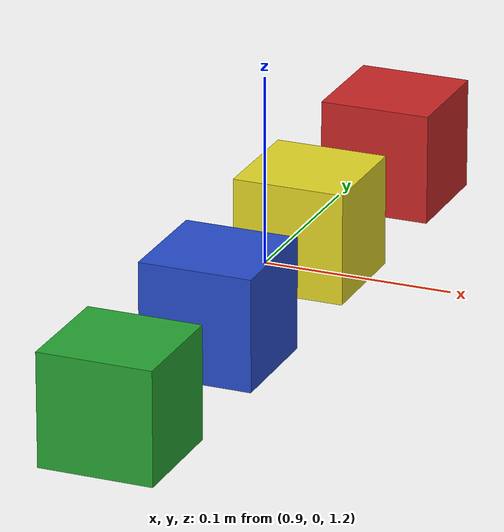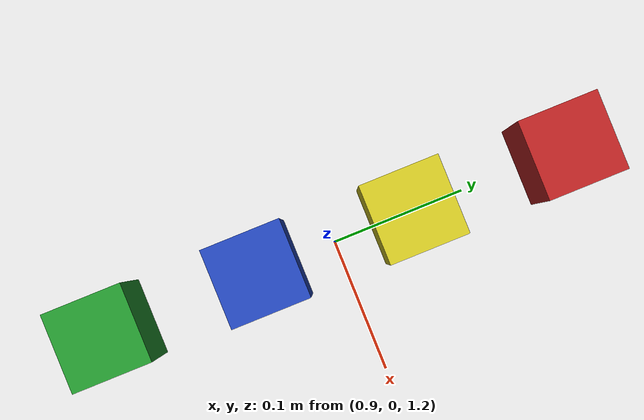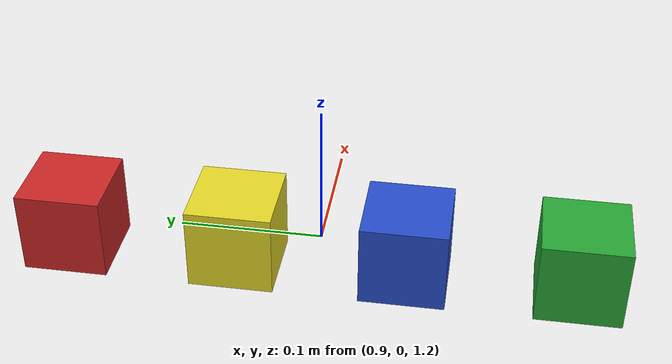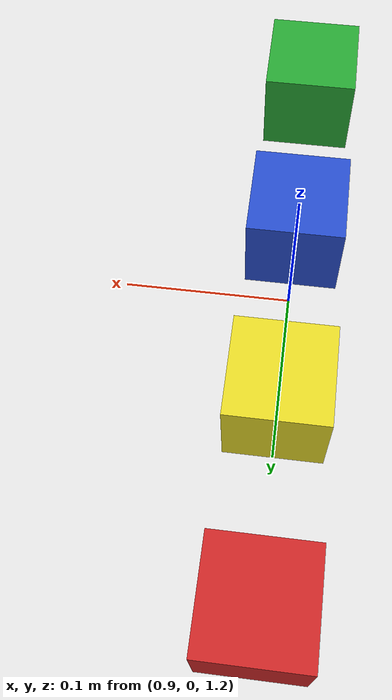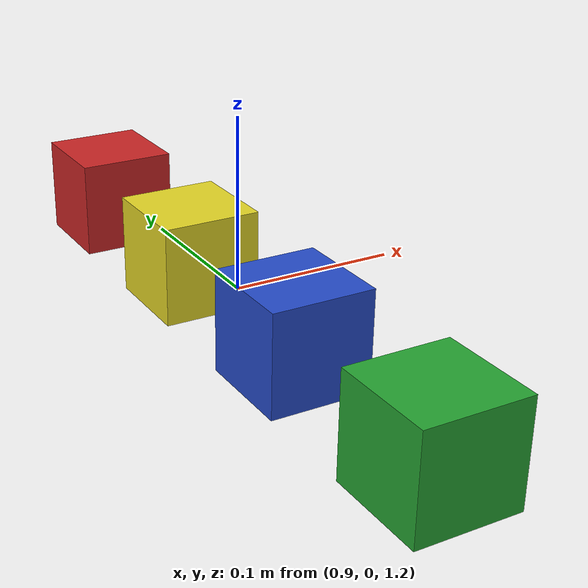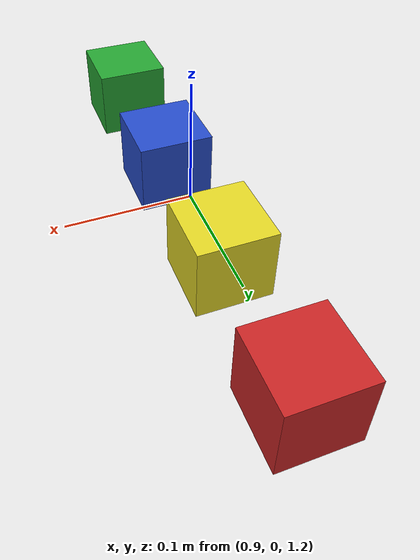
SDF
<sdf version="1.4">
 <world name="default">
  <physics type="ode">
   <gravity>0 0 -9.81</gravity>
   <ode>
    <solver><type>quick</type><iters>20</iters><sor>1.0</sor></solver>
    <constraints>
     <cfm>0.0</cfm>
     <erp>0.2</erp>
     <contact_max_correcting_vel>100.0</contact_max_correcting_vel>
     <contact_surface_layer>0.0</contact_surface_layer>
    </constraints>
   </ode>
   <real_time_update_rate>1000</real_time_update_rate>
   <max_step_size>0.001</max_step_size>
  </physics>
  <light type="directional" name="light1">
   <pose>-2 0 4 0 0 0</pose>
   <diffuse>1.0 1.0 1.0 1</diffuse>
   <specular>0.1 0.1 0.1 1</specular>
   <attenuation>
    <range>20</range>
    <constant>0.9</constant>
    <linear>0.01</linear>
    <quadratic>0.001</quadratic>
   </attenuation>
   <direction>0.2 0.0 -1.0</direction>
  </light>
  <include><uri>model://ground_plane</uri></include>
  <include><uri>model://cube_green</uri><pose>0.90 -0.18 1.2 0 0 0</pose></include>
  <include><uri>model://cube_red</uri><pose>0.90 0.18 1.2 0 0 0</pose></include>
  <include><uri>model://cube_blue</uri><pose>0.90 -0.06 1.2 0 0 0</pose></include>
  <include><uri>model://cube_yellow</uri><pose>0.90 0.06 1.2 0 0 0</pose></include>
 </world>
</sdf>

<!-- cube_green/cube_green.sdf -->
<sdf version='1.4'>
  <model name="cube_green">
      <static>0</static>
      <link name='link'>
        <inertial>
          <mass>0.01</mass>
          <inertia>
            <ixx>0.00006</ixx>
            <ixy>0.000000</ixy>
            <ixz>0.000000</ixz>
            <iyy>0.00006</iyy>
            <iyz>0.000000</iyz>
            <izz>0.00006</izz>
          </inertia>
        </inertial>
        <collision name='collision'>
          <geometry>
            <box>
              <size>0.06 0.06 0.06</size>
            </box>
          </geometry>
        <surface>
          <friction>
            <ode>
              <mu>30.0</mu>
              <mu2>30.0</mu2>
              <fdir1>0 0 0</fdir1>
            </ode>
          </friction>
          <contact>
            <ode>
              <kp>1000000.0</kp>
              <kd>100.0</kd>
              <min_depth>0.005</min_depth>
              <max_vel>1.0</max_vel>
            </ode>
          </contact>
        </surface>
        </collision>
        <visual name='visual'>
          <geometry>
            <box>
              <size>0.060 0.060 0.060</size>
            </box>
          </geometry>
          <material>
            <script>
              <uri>file://media/materials/scripts/gazebo.material</uri>
              <name>Gazebo/Green</name>
            </script>
          </material>
        </visual>
        <gravity>1</gravity>
      </link>
  </model>
</sdf>

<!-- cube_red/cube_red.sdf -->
<sdf version='1.4'>
  <model name="cube_red">
      <static>0</static>
      <link name='link'>
        <inertial>
          <mass>0.01</mass>
          <inertia>
            <ixx>0.00006</ixx>
            <ixy>0.000000</ixy>
            <ixz>0.000000</ixz>
            <iyy>0.00006</iyy>
            <iyz>0.000000</iyz>
            <izz>0.00006</izz>
          </inertia>
        </inertial>
        <collision name='collision'>
          <geometry>
            <box>
              <size>0.06 0.06 0.06</size>
            </box>
          </geometry>
        <surface>
          <friction>
            <ode>
              <mu>30.0</mu>
              <mu2>30.0</mu2>
              <fdir1>0 0 0</fdir1>
            </ode>
          </friction>
          <contact>
            <ode>
              <kp>1000000.0</kp>
              <kd>100.0</kd>
              <min_depth>0.005</min_depth>
              <max_vel>1.0</max_vel>
            </ode>
          </contact>
        </surface>
        </collision>
        <visual name='visual'>
          <geometry>
            <box>
              <size>0.060 0.060 0.060</size>
            </box>
          </geometry>
          <material>
            <script>
              <uri>file://media/materials/scripts/gazebo.material</uri>
              <name>Gazebo/Red</name>
            </script>
          </material>
        </visual>
        <gravity>1</gravity>
      </link>
  </model>
</sdf>

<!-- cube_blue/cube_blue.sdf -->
<sdf version='1.4'>
  <model name="cube_blue">
      <static>0</static>
      <link name='link'>
        <inertial>
          <mass>0.01</mass>
          <inertia>
            <ixx>0.00006</ixx>
            <ixy>0.000000</ixy>
            <ixz>0.000000</ixz>
            <iyy>0.00006</iyy>
            <iyz>0.000000</iyz>
            <izz>0.00006</izz>
          </inertia>
        </inertial>
        <collision name='collision'>
          <geometry>
            <box>
              <size>0.06 0.06 0.06</size>
            </box>
          </geometry>
        <surface>
          <friction>
            <ode>
              <mu>30.0</mu>
              <mu2>30.0</mu2>
              <fdir1>0 0 0</fdir1>
            </ode>
          </friction>
          <contact>
            <ode>
              <kp>1000000.0</kp>
              <kd>100.0</kd>
              <min_depth>0.005</min_depth>
              <max_vel>1.0</max_vel>
            </ode>
          </contact>
        </surface>
        </collision>
        <visual name='visual'>
          <geometry>
            <box>
              <size>0.060 0.060 0.060</size>
            </box>
          </geometry>
          <material>
            <script>
              <uri>file://media/materials/scripts/gazebo.material</uri>
              <name>Gazebo/Blue</name>
            </script>
          </material>
        </visual>
        <gravity>1</gravity>
      </link>
  </model>
</sdf>

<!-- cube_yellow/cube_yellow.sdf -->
<sdf version='1.4'>
  <model name="cube_yellow">
      <static>0</static>
      <link name='link'>
        <inertial>
          <mass>0.01</mass>
          <inertia>
            <ixx>0.00006</ixx>
            <ixy>0.000000</ixy>
            <ixz>0.000000</ixz>
            <iyy>0.00006</iyy>
            <iyz>0.000000</iyz>
            <izz>0.00006</izz>
          </inertia>
        </inertial>
        <collision name='collision'>
          <geometry>
            <box>
              <size>0.06 0.06 0.06</size>
            </box>
          </geometry>
        <surface>
          <friction>
            <ode>
              <mu>30.0</mu>
              <mu2>30.0</mu2>
              <fdir1>0 0 0</fdir1>
            </ode>
          </friction>
          <contact>
            <ode>
              <kp>1000000.0</kp>
              <kd>100.0</kd>
              <min_depth>0.005</min_depth>
              <max_vel>1.0</max_vel>
            </ode>
          </contact>
        </surface>
        </collision>
        <visual name='visual'>
          <geometry>
            <box>
              <size>0.060 0.060 0.060</size>
            </box>
          </geometry>
          <material>
            <script>
              <uri>file://media/materials/scripts/gazebo.material</uri>
              <name>Gazebo/Yellow</name>
            </script>
          </material>
        </visual>
        <gravity>1</gravity>
      </link>
  </model>
</sdf>
